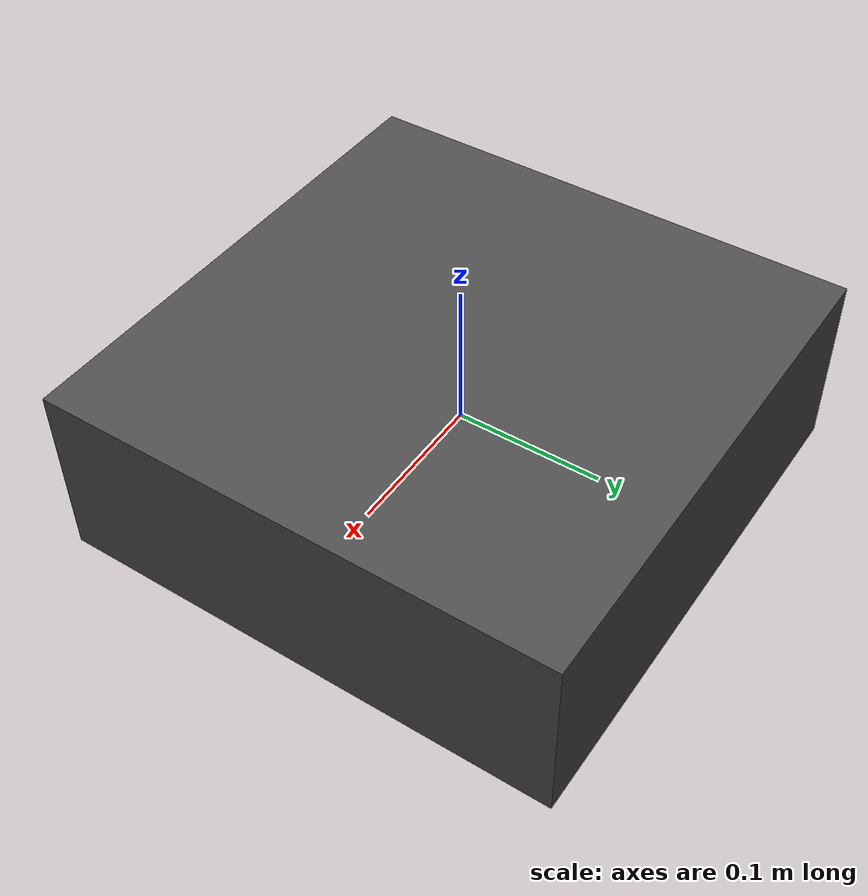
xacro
<?xml version="1.0"?>
<robot xmlns:xacro="http://www.ros.org/wiki/xacro" name="chaser">

<xacro:property name="body_height" value="0.125" />
<xacro:property name="body_width" value="0.35" />
<xacro:property name="body_length" value="0.35" />

<gazebo reference="chaser_body">
    <material>Gazebo/DarkGrey</material>
    <mu1>0</mu1>
    <mu2>0</mu2>
</gazebo>

<link name="chaser_body">
    <visual>
      <geometry>
        <box size="${body_length} ${body_width} ${body_height}"/>
      </geometry>
    </visual>

    <collision>
      <geometry>
        <box size="${body_length} ${body_width} ${body_height}"/>
      </geometry>
    </collision>

    <inertial>
      <mass value="0.18"/>
      <inertia ixx="6.0e-4" ixy="0" ixz="0" iyy="6.0e-4" iyz="0" izz="6.0e-4"/>
    </inertial>

</link>

  <gazebo>
  	<plugin name="plannar_mover_plugin" filename="libplannar_mover_plugin.so"> </plugin>
  </gazebo>

</robot>
